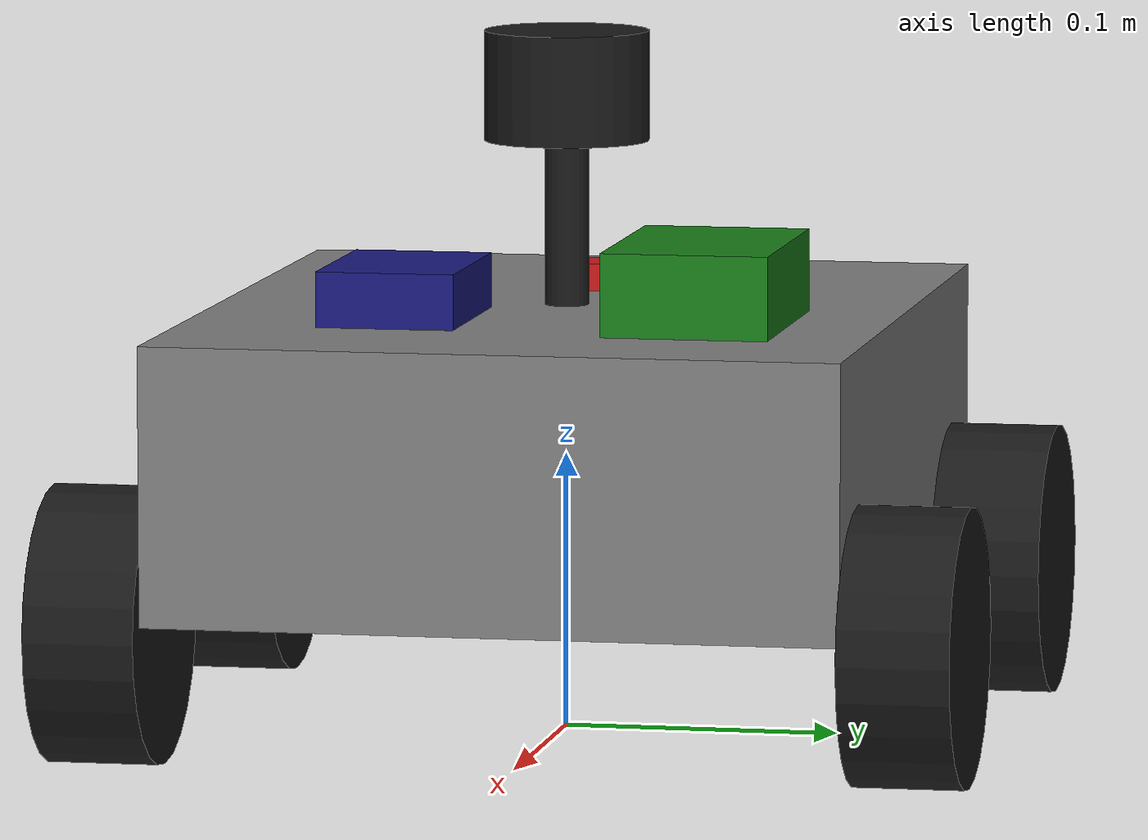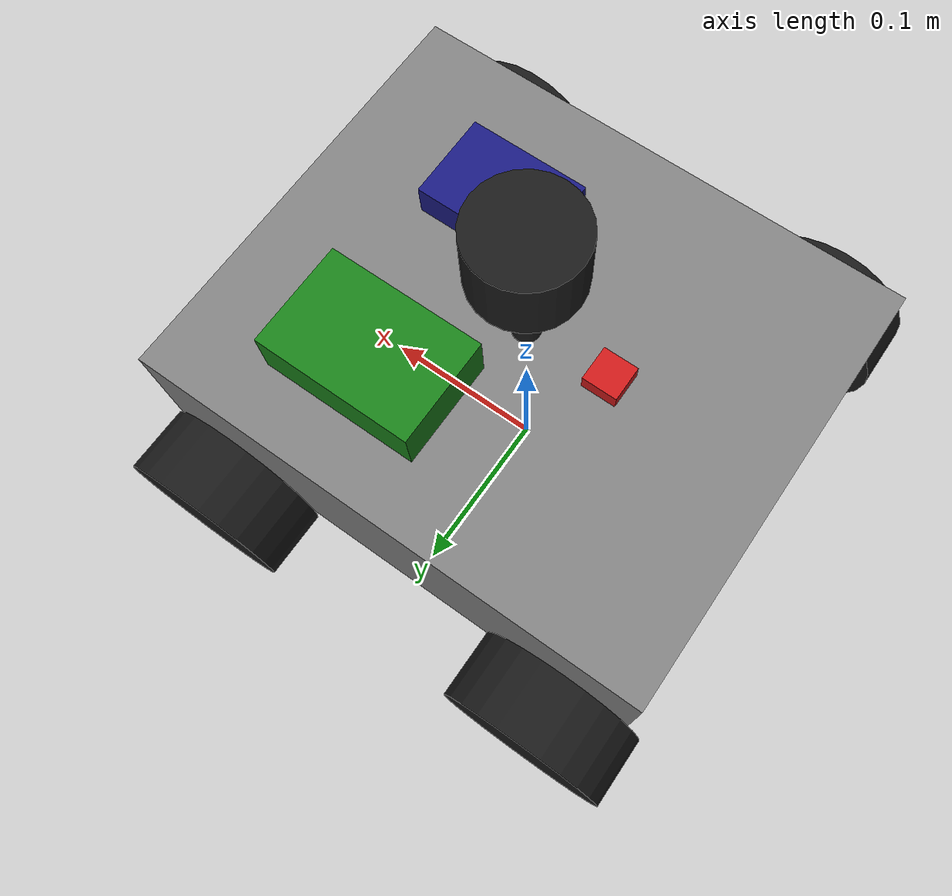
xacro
<?xml version="1.0"?>
<robot name="my_rover" xmlns:xacro="http://www.ros.org/wiki/xacro">

  <xacro:property name="pi" value="3.14159265359"/>

  <!-- Chassis dimensions -->
  <xacro:property name="chassis_length" value="0.30"/>
  <xacro:property name="chassis_width" value="0.25"/>
  <xacro:property name="chassis_height" value="0.10"/>
  <xacro:property name="chassis_mass" value="2.0"/>

  <!-- Ground clearance: how high the chassis floor sits above the wheel-ground contact point -->
  <xacro:property name="ground_clearance" value="0.005"/>

  <!-- Wheel dimensions and placement -->
  <xacro:property name="wheel_radius" value="0.05"/>
  <xacro:property name="wheel_width" value="0.04"/>
  <xacro:property name="wheel_mass" value="0.2"/>
  <xacro:property name="wheelbase" value="0.22"/>      <!-- front-to-rear axle distance -->
  <xacro:property name="track_width" value="0.29"/>    <!-- left-to-right wheel distance -->

  <!-- Onboard electronics (placeholder sizes) -->
  <xacro:property name="pi_length" value="0.09"/>
  <xacro:property name="pi_width" value="0.06"/>
  <xacro:property name="pi_height" value="0.03"/>
  <xacro:property name="pi_mass" value="0.05"/>

  <xacro:property name="stm32_length" value="0.07"/>
  <xacro:property name="stm32_width" value="0.05"/>
  <xacro:property name="stm32_height" value="0.02"/>
  <xacro:property name="stm32_mass" value="0.03"/>

  <!-- LiDAR post: raises the LiDAR above the electronics boxes -->
  <xacro:property name="post_radius" value="0.008"/>
  <xacro:property name="post_height" value="0.06"/>
  <xacro:property name="post_mass" value="0.02"/>

  <!-- LiDAR dimensions and mount position -->
  <xacro:property name="lidar_radius" value="0.03"/>
  <xacro:property name="lidar_height" value="0.04"/>
  <xacro:property name="lidar_mass" value="0.1"/>

  <!-- IMU dimensions (small, placeholder size) -->
  <xacro:property name="imu_length" value="0.02"/>
  <xacro:property name="imu_width" value="0.02"/>
  <xacro:property name="imu_height" value="0.01"/>
  <xacro:property name="imu_mass" value="0.01"/>

  <link name="base_link"/>

  <link name="base_footprint"/>

  <joint name="base_footprint_to_base_link" type="fixed">
    <parent link="base_footprint"/>
    <child link="base_link"/>
    <origin xyz="0 0 0" rpy="0 0 0"/>
  </joint>

  <link name="chassis_link">
    <visual>
      <geometry>
        <box size="${chassis_length} ${chassis_width} ${chassis_height}"/>
      </geometry>
      <material name="grey">
        <color rgba="0.5 0.5 0.5 1"/>
      </material>
    </visual>
    <collision>
      <geometry>
        <box size="${chassis_length} ${chassis_width} ${chassis_height}"/>
      </geometry>
    </collision>
    <inertial>
      <mass value="${chassis_mass}"/>
      <inertia
        ixx="${chassis_mass * (chassis_width*chassis_width + chassis_height*chassis_height) / 12}" ixy="0" ixz="0"
        iyy="${chassis_mass * (chassis_length*chassis_length + chassis_height*chassis_height) / 12}" iyz="0"
        izz="${chassis_mass * (chassis_length*chassis_length + chassis_width*chassis_width) / 12}"/>
    </inertial>
  </link>

    <joint name="base_to_chassis" type="fixed">
    <parent link="base_link"/>
    <child link="chassis_link"/>
    <origin xyz="0 0 ${wheel_radius + ground_clearance + chassis_height/2}" rpy="0 0 0"/>
  </joint>

  <!-- ===== Wheel macro: define once, use four times ===== -->
  <xacro:macro name="wheel" params="prefix x_offset y_offset">
    <link name="${prefix}_wheel_link">
      <visual>
        <origin xyz="0 0 0" rpy="${-pi/2} 0 0"/>
        <geometry>
          <cylinder radius="${wheel_radius}" length="${wheel_width}"/>
        </geometry>
        <material name="black">
          <color rgba="0.1 0.1 0.1 1"/>
        </material>
      </visual>
      <collision>
        <origin xyz="0 0 0" rpy="${-pi/2} 0 0"/>
        <geometry>
          <cylinder radius="${wheel_radius}" length="${wheel_width}"/>
        </geometry>
      </collision>
      <inertial>
        <mass value="${wheel_mass}"/>
        <inertia
          ixx="${wheel_mass * (3*wheel_radius*wheel_radius + wheel_width*wheel_width) / 12}" ixy="0" ixz="0"
          iyy="${wheel_mass * wheel_radius*wheel_radius / 2}" iyz="0"
          izz="${wheel_mass * (3*wheel_radius*wheel_radius + wheel_width*wheel_width) / 12}"/>
      </inertial>
    </link>

    <joint name="${prefix}_wheel_joint" type="continuous">
      <parent link="base_link"/>
      <child link="${prefix}_wheel_link"/>
      <origin xyz="${x_offset} ${y_offset} ${wheel_radius}" rpy="0 0 0"/>
      <axis xyz="0 1 0"/>
    </joint>
  </xacro:macro>

  <!-- Four instantiations: front/rear, left/right -->
  <xacro:wheel prefix="front_left"  x_offset="${wheelbase/2}"  y_offset="${track_width/2}"/>
  <xacro:wheel prefix="front_right" x_offset="${wheelbase/2}"  y_offset="${-track_width/2}"/>
  <xacro:wheel prefix="rear_left"   x_offset="${-wheelbase/2}" y_offset="${track_width/2}"/>
  <xacro:wheel prefix="rear_right"  x_offset="${-wheelbase/2}" y_offset="${-track_width/2}"/>

    <link name="pi_link">
    <visual>
      <geometry>
        <box size="${pi_length} ${pi_width} ${pi_height}"/>
      </geometry>
      <material name="green">
        <color rgba="0.1 0.5 0.1 1"/>
      </material>
    </visual>
    <collision>
      <geometry>
        <box size="${pi_length} ${pi_width} ${pi_height}"/>
      </geometry>
    </collision>
    <inertial>
      <mass value="${pi_mass}"/>
      <inertia
        ixx="${pi_mass * (pi_width*pi_width + pi_height*pi_height) / 12}" ixy="0" ixz="0"
        iyy="${pi_mass * (pi_length*pi_length + pi_height*pi_height) / 12}" iyz="0"
        izz="${pi_mass * (pi_length*pi_length + pi_width*pi_width) / 12}"/>
    </inertial>
  </link>

  <joint name="pi_joint" type="fixed">
    <parent link="chassis_link"/>
    <child link="pi_link"/>
    <origin xyz="0.05 0.06 ${chassis_height/2 + pi_height/2}" rpy="0 0 0"/>
  </joint>

  <link name="stm32_link">
    <visual>
      <geometry>
        <box size="${stm32_length} ${stm32_width} ${stm32_height}"/>
      </geometry>
      <material name="blue">
        <color rgba="0.1 0.1 0.5 1"/>
      </material>
    </visual>
    <collision>
      <geometry>
        <box size="${stm32_length} ${stm32_width} ${stm32_height}"/>
      </geometry>
    </collision>
    <inertial>
      <mass value="${stm32_mass}"/>
      <inertia
        ixx="${stm32_mass * (stm32_width*stm32_width + stm32_height*stm32_height) / 12}" ixy="0" ixz="0"
        iyy="${stm32_mass * (stm32_length*stm32_length + stm32_height*stm32_height) / 12}" iyz="0"
        izz="${stm32_mass * (stm32_length*stm32_length + stm32_width*stm32_width) / 12}"/>
    </inertial>
  </link>

  <joint name="stm32_joint" type="fixed">
    <parent link="chassis_link"/>
    <child link="stm32_link"/>
    <origin xyz="0.05 -0.05 ${chassis_height/2 + stm32_height/2}" rpy="0 0 0"/>
  </joint>

  <link name="lidar_post_link">
    <visual>
      <geometry>
        <cylinder radius="${post_radius}" length="${post_height}"/>
      </geometry>
      <material name="black"/>
    </visual>
    <collision>
      <geometry>
        <cylinder radius="${post_radius}" length="${post_height}"/>
      </geometry>
    </collision>
    <inertial>
      <mass value="${post_mass}"/>
      <inertia
        ixx="${post_mass * (3*post_radius*post_radius + post_height*post_height) / 12}" ixy="0" ixz="0"
        iyy="${post_mass * (3*post_radius*post_radius + post_height*post_height) / 12}" iyz="0"
        izz="${post_mass * post_radius*post_radius / 2}"/>
    </inertial>
  </link>

  <joint name="post_joint" type="fixed">
    <parent link="chassis_link"/>
    <child link="lidar_post_link"/>
    <origin xyz="0 0 ${chassis_height/2 + post_height/2}" rpy="0 0 0"/>
  </joint>

      <link name="lidar_link">
    <visual>
      <geometry>
        <cylinder radius="${lidar_radius}" length="${lidar_height}"/>
      </geometry>
      <material name="black"/>
    </visual>
    <collision>
      <geometry>
        <cylinder radius="${lidar_radius}" length="${lidar_height}"/>
      </geometry>
    </collision>
    <inertial>
      <mass value="${lidar_mass}"/>
      <inertia
        ixx="${lidar_mass * (3*lidar_radius*lidar_radius + lidar_height*lidar_height) / 12}" ixy="0" ixz="0"
        iyy="${lidar_mass * (3*lidar_radius*lidar_radius + lidar_height*lidar_height) / 12}" iyz="0"
        izz="${lidar_mass * lidar_radius*lidar_radius / 2}"/>
    </inertial>
  </link>

  <joint name="lidar_joint" type="fixed">
    <parent link="lidar_post_link"/>
    <child link="lidar_link"/>
    <origin xyz="0 0 ${post_height/2 + lidar_height/2}" rpy="0 0 0"/>
  </joint>

    <gazebo reference="lidar_link">
    <sensor name="lidar_sensor" type="gpu_lidar">
      <gz_frame_id>lidar_link</gz_frame_id>
      <pose>0 0 0 0 0 0</pose>
      <topic>scan</topic>
      <update_rate>10</update_rate>
      <always_on>true</always_on>
      <visualize>false</visualize>
      <lidar>
        <scan>
          <horizontal>
            <samples>360</samples>
            <resolution>1</resolution>
            <min_angle>-3.14159</min_angle>
            <max_angle>3.14159</max_angle>
          </horizontal>
        </scan>
        <range>
          <min>0.12</min>
          <max>10.0</max>
          <resolution>0.015</resolution>
        </range>
      </lidar>
    </sensor>
  </gazebo>

    <link name="imu_link">
    <visual>
      <geometry>
        <box size="${imu_length} ${imu_width} ${imu_height}"/>
      </geometry>
      <material name="red">
        <color rgba="0.8 0.1 0.1 1"/>
      </material>
    </visual>
    <collision>
      <geometry>
        <box size="${imu_length} ${imu_width} ${imu_height}"/>
      </geometry>
    </collision>
    <inertial>
      <mass value="${imu_mass}"/>
      <inertia
        ixx="${imu_mass * (imu_width*imu_width + imu_height*imu_height) / 12}" ixy="0" ixz="0"
        iyy="${imu_mass * (imu_length*imu_length + imu_height*imu_height) / 12}" iyz="0"
        izz="${imu_mass * (imu_length*imu_length + imu_width*imu_width) / 12}"/>
    </inertial>
  </link>

  <joint name="imu_joint" type="fixed">
    <parent link="chassis_link"/>
    <child link="imu_link"/>
    <origin xyz="-0.05 0 ${chassis_height/2 + imu_height/2}" rpy="0 0 0"/>
  </joint>

    <gazebo reference="imu_link">
    <sensor name="imu_sensor" type="imu">
      <gz_frame_id>imu_link</gz_frame_id>
      <pose>0 0 0 0 0 0</pose>
      <topic>imu</topic>
      <update_rate>100</update_rate>
      <always_on>true</always_on>
      <visualize>false</visualize>
    </sensor>
  </gazebo>

    <gazebo>
    <plugin filename="gz-sim-diff-drive-system" name="gz::sim::systems::DiffDrive">
      <left_joint>front_left_wheel_joint</left_joint>
      <left_joint>rear_left_wheel_joint</left_joint>
      <right_joint>front_right_wheel_joint</right_joint>
      <right_joint>rear_right_wheel_joint</right_joint>

      <wheel_separation>0.42</wheel_separation> <!-- diff drive over estimates rotation, so changing this value to make up for it -->
      <wheel_radius>${wheel_radius}</wheel_radius>

      <topic>cmd_vel</topic>
      <odom_topic>odom</odom_topic>
      <tf_topic>tf</tf_topic>
      <frame_id>odom</frame_id>
      <child_frame_id>base_footprint</child_frame_id>
      <odom_publish_frequency>30</odom_publish_frequency>
    </plugin>
  </gazebo>

    <gazebo>
    <plugin filename="gz-sim-odometry-publisher-system" name="gz::sim::systems::OdometryPublisher">
      <odom_frame>ground_truth_odom</odom_frame>
      <robot_base_frame>base_footprint</robot_base_frame>
      <odom_topic>ground_truth_odom</odom_topic>
      <odom_publish_frequency>30</odom_publish_frequency>
      <dimensions>2</dimensions>
    </plugin>
  </gazebo>

</robot>
